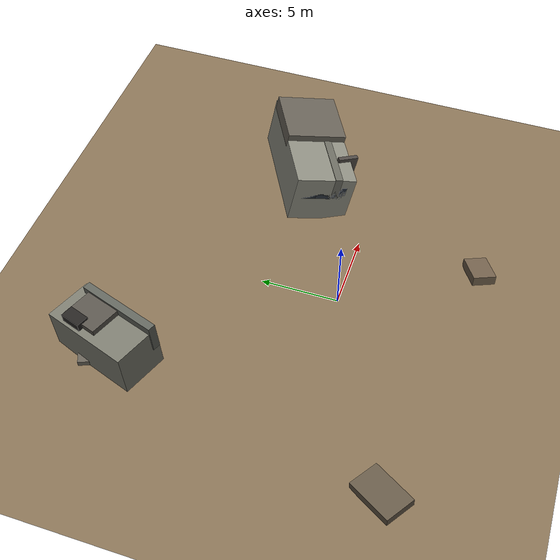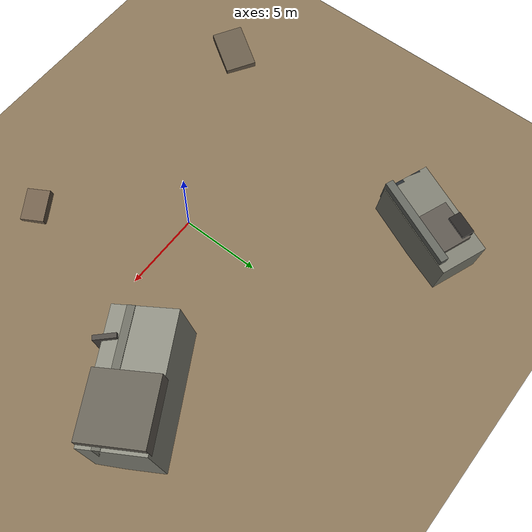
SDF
<sdf version="1.6">
 <world name="rescue_world">
  <plugin filename="gz-sim-physics-system" name="gz::sim::systems::Physics"/>
  <plugin filename="gz-sim-user-commands-system" name="gz::sim::systems::UserCommands"/>
  <plugin filename="gz-sim-scene-broadcaster-system" name="gz::sim::systems::SceneBroadcaster"/>
  <plugin filename="gz-sim-sensors-system" name="gz::sim::systems::Sensors">
   <render_engine>ogre2</render_engine>
  </plugin>
  <plugin filename="gz-sim-imu-system" name="gz::sim::systems::Imu"/>
  <scene>
   <ambient>0.5 0.5 0.5 1</ambient>
   <background>0.53 0.81 0.98 1</background>
   <shadows>false</shadows>
  </scene>
  <light type="directional" name="sun">
   <direction>-0.5 0.1 -0.9</direction>
   <diffuse>1.0 0.95 0.9 1</diffuse>
   <specular>0.2 0.2 0.2 1</specular>
  </light>
  <model name="ground">
   <static>true</static>
   <link name="link">
    <collision name="collision">
     <geometry><plane><normal>0 0 1</normal><size>200 200</size></plane></geometry>
    </collision>
    <visual name="visual">
     <geometry><plane><size>200 200</size></plane></geometry>
     <material>
      <ambient>0.52 0.44 0.33 1</ambient>
      <diffuse>0.52 0.44 0.33 1</diffuse>
      <specular>0.02 0.02 0.02 1</specular>
     </material>
    </visual>
   </link>
  </model>
  <model name="building_1">
   <static>true</static>
   <pose>10 5 1.75 0.2 0.0 0.5</pose>
   <link name="link">
    <collision name="collision"><geometry><box><size>8 4 3.5</size></box></geometry></collision>
    <visual name="main_visual">
     <geometry><box><size>8 4 3.5</size></box></geometry>
     <material><ambient>0.55 0.55 0.50 1</ambient><diffuse>0.55 0.55 0.50 1</diffuse></material>
    </visual>
    <visual name="secondary_strip">
     <pose>0 -0.8 0.9 0 0 0</pose>
     <geometry><box><size>8 0.5 1.8</size></box></geometry>
     <material><ambient>0.42 0.42 0.38 1</ambient><diffuse>0.42 0.42 0.38 1</diffuse></material>
    </visual>
    <visual name="roof_rubble">
     <pose>1.8 0 1.7 0 0 0</pose>
     <geometry><box><size>4 4 1.0</size></box></geometry>
     <material><ambient>0.40 0.38 0.34 1</ambient><diffuse>0.40 0.38 0.34 1</diffuse></material>
    </visual>
    <visual name="hinged_wall">
     <pose>-2.0 -1.8 0.9 0 0 0.2</pose>
     <geometry><box><size>0.3 1.4 2.2</size></box></geometry>
     <material><ambient>0.30 0.28 0.26 1</ambient><diffuse>0.30 0.28 0.26 1</diffuse></material>
    </visual>
    <visual name="hole_panel">
     <pose>2.8 1.6 1.0 0 0 0</pose>
     <geometry><box><size>1.8 0.2 1.8</size></box></geometry>
     <material><ambient>0.12 0.12 0.12 1</ambient><diffuse>0.12 0.12 0.12 1</diffuse></material>
    </visual>
    <visual name="window_1">
     <pose>-3.9 -1.0 0.6 0 0 0</pose>
     <geometry><box><size>0.2 1.0 1.0</size></box></geometry>
     <material><ambient>0.15 0.18 0.22 1</ambient><diffuse>0.15 0.18 0.22 1</diffuse></material>
    </visual>
    <visual name="window_2">
     <pose>-3.9 0.0 0.6 0 0 0</pose>
     <geometry><box><size>0.2 1.0 1.0</size></box></geometry>
     <material><ambient>0.17 0.20 0.24 1</ambient><diffuse>0.17 0.20 0.24 1</diffuse></material>
    </visual>
    <visual name="window_3">
     <pose>-3.9 1.0 0.6 0 0 0</pose>
     <geometry><box><size>0.2 1.0 1.0</size></box></geometry>
     <material><ambient>0.12 0.15 0.18 1</ambient><diffuse>0.12 0.15 0.18 1</diffuse></material>
    </visual>
   </link>
  </model>
  <model name="building_2">
   <static>true</static>
   <pose>-8 12 1.4 0.0 0.1 1.2</pose>
   <link name="link">
    <collision name="collision"><geometry><box><size>6 3 2.8</size></box></geometry></collision>
    <visual name="main_visual">
     <geometry><box><size>6 3 2.8</size></box></geometry>
     <material><ambient>0.48 0.48 0.43 1</ambient><diffuse>0.48 0.48 0.43 1</diffuse></material>
    </visual>
    <visual name="secondary_panel">
     <pose>-0.3 -1.2 1.0 0 0 0</pose>
     <geometry><box><size>5.6 0.5 1.8</size></box></geometry>
     <material><ambient>0.38 0.39 0.36 1</ambient><diffuse>0.38 0.39 0.36 1</diffuse></material>
    </visual>
    <visual name="collapsed_chunk">
     <pose>0.8 0 1.35 0 0 0</pose>
     <geometry><box><size>2.5 2.0 0.8</size></box></geometry>
     <material><ambient>0.35 0.33 0.30 1</ambient><diffuse>0.35 0.33 0.30 1</diffuse></material>
    </visual>
    <visual name="broken_wall">
     <pose>1.2 0.9 1.0 0 0 0</pose>
     <geometry><box><size>1.4 0.8 1.8</size></box></geometry>
     <material><ambient>0.15 0.14 0.13 1</ambient><diffuse>0.15 0.14 0.13 1</diffuse></material>
    </visual>
    <visual name="window_a">
     <pose>-2.9 -0.6 1.0 0 0 0</pose>
     <geometry><box><size>0.18 0.8 0.8</size></box></geometry>
     <material><ambient>0.14 0.16 0.18 1</ambient><diffuse>0.14 0.16 0.18 1</diffuse></material>
    </visual>
    <visual name="window_b">
     <pose>-2.9 0.6 1.0 0 0 0</pose>
     <geometry><box><size>0.18 0.8 0.8</size></box></geometry>
     <material><ambient>0.16 0.18 0.20 1</ambient><diffuse>0.16 0.18 0.20 1</diffuse></material>
    </visual>
   </link>
  </model>
  <model name="fallen_block_1">
   <static>true</static>
   <pose>8.5 6.2 0.2 0.0 0.0 0.35</pose>
   <link name="link">
    <collision name="collision"><geometry><box><size>0.8 0.8 0.4</size></box></geometry></collision>
    <visual name="visual">
     <geometry><box><size>0.8 0.8 0.4</size></box></geometry>
     <material><ambient>0.42 0.40 0.36 1</ambient><diffuse>0.42 0.40 0.36 1</diffuse></material>
    </visual>
   </link>
  </model>
  <model name="fallen_block_2">
   <static>true</static>
   <pose>11.5 4.8 0.25 0.0 0.0 0.1</pose>
   <link name="link">
    <collision name="collision"><geometry><box><size>0.6 0.9 0.3</size></box></geometry></collision>
    <visual name="visual">
     <geometry><box><size>0.6 0.9 0.3</size></box></geometry>
     <material><ambient>0.38 0.36 0.33 1</ambient><diffuse>0.38 0.36 0.33 1</diffuse></material>
    </visual>
   </link>
  </model>
  <model name="fallen_block_3">
   <static>true</static>
   <pose>-9.2 13.1 0.22 0.0 0.0 0.4</pose>
   <link name="link">
    <collision name="collision"><geometry><box><size>0.7 0.7 0.35</size></box></geometry></collision>
    <visual name="visual">
     <geometry><box><size>0.7 0.7 0.35</size></box></geometry>
     <material><ambient>0.40 0.38 0.34 1</ambient><diffuse>0.40 0.38 0.34 1</diffuse></material>
    </visual>
   </link>
  </model>
  <model name="fallen_block_4">
   <static>true</static>
   <pose>10.8 5.9 0.20 0.0 0.0 0.9</pose>
   <link name="link">
    <collision name="collision"><geometry><box><size>0.9 0.6 0.35</size></box></geometry></collision>
    <visual name="visual">
     <pose>0 0 0 0.0 0.5 0.2</pose>
     <geometry><box><size>0.9 0.6 0.35</size></box></geometry>
     <material><ambient>0.38 0.36 0.32 1</ambient><diffuse>0.38 0.36 0.32 1</diffuse></material>
    </visual>
   </link>
  </model>
  <model name="rubble_1">
   <static>true</static>
   <pose>5 -8 0.3 0.1 0.2 0.5</pose>
   <link name="link">
    <collision name="collision"><geometry><box><size>2.0 1.5 0.6</size></box></geometry></collision>
    <visual name="visual">
     <geometry><box><size>2.0 1.5 0.6</size></box></geometry>
     <material><ambient>0.45 0.38 0.30 1</ambient><diffuse>0.45 0.38 0.30 1</diffuse></material>
    </visual>
   </link>
  </model>
  <model name="rubble_2">
   <static>true</static>
   <pose>-12 -6 0.25 0.05 0.1 1.0</pose>
   <link name="link">
    <collision name="collision"><geometry><box><size>3.0 2.0 0.5</size></box></geometry></collision>
    <visual name="visual">
     <geometry><box><size>3.0 2.0 0.5</size></box></geometry>
     <material><ambient>0.40 0.35 0.28 1</ambient><diffuse>0.40 0.35 0.28 1</diffuse></material>
    </visual>
   </link>
  </model>
 </world>
</sdf>
